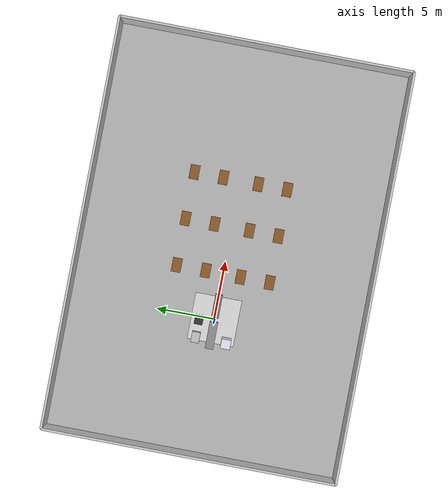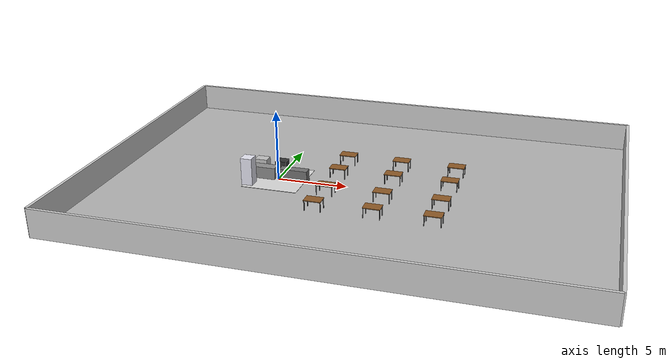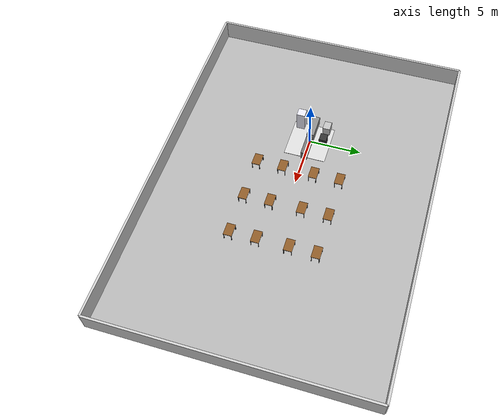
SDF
<?xml version="1.0" ?>

<sdf version="1.6">

<world name="restaurant_world">
<plugin name="gazebo_ros_state" filename="libgazebo_ros_state.so"/>

<!-- ================= FLOOR SECTION ================= -->

<model name="restaurant_floor">
     <pose>6 0 0 0 0 0</pose>
    <static>true</static>

    <link name="floor">

        <collision name="collision">
            <geometry>
                <box>
                    <size>35 25 0.05</size>
                </box>
            </geometry>
        </collision>

        <visual name="visual">
            <geometry>
                <box>
                    <size>35 25 0.05</size>
                </box>
            </geometry>

            <material>
                <ambient>
                    0.7 0.7 0.7 1
                </ambient>
            </material>

        </visual>

    </link>

</model>

<!-- ================= WALLS SECTION ================= -->
<model name="restaurant_walls">
    <static>true</static>
    <pose>0 0 0 0 0 0</pose>

    <!-- North wall -->
    <link name="wall_north">
        <pose>6 12.5 1 0 0 0</pose>
        <collision name="collision">
            <geometry><box><size>35 0.2 2</size></box></geometry>
        </collision>
        <visual name="visual">
            <geometry><box><size>35 0.2 2</size></box></geometry>
            <material>
                <ambient>0.8 0.8 0.8 1</ambient>
                <diffuse>0.8 0.8 0.8 1</diffuse>
            </material>
        </visual>
    </link>

    <!-- South wall -->
    <link name="wall_south">
        <pose>6 -12.5 1 0 0 0</pose>
        <collision name="collision">
            <geometry><box><size>35 0.2 2</size></box></geometry>
        </collision>
        <visual name="visual">
            <geometry><box><size>35 0.2 2</size></box></geometry>
            <material>
                <ambient>0.8 0.8 0.8 1</ambient>
                <diffuse>0.8 0.8 0.8 1</diffuse>
            </material>
        </visual>
    </link>

    <!-- East wall -->
    <link name="wall_east">
        <pose>23.5 0 1 0 0 1.5708</pose>
        <collision name="collision">
            <geometry><box><size>25 0.2 2</size></box></geometry>
        </collision>
        <visual name="visual">
            <geometry><box><size>25 0.2 2</size></box></geometry>
            <material>
                <ambient>0.8 0.8 0.8 1</ambient>
                <diffuse>0.8 0.8 0.8 1</diffuse>
            </material>
        </visual>
    </link>

    <!-- West wall -->
    <link name="wall_west">
        <pose>-11.5 0 1 0 0 1.5708</pose>
        <collision name="collision">
            <geometry><box><size>25 0.2 2</size></box></geometry>
        </collision>
        <visual name="visual">
            <geometry><box><size>25 0.2 2</size></box></geometry>
            <material>
                <ambient>0.8 0.8 0.8 1</ambient>
                <diffuse>0.8 0.8 0.8 1</diffuse>
            </material>
        </visual>
    </link>
</model>

<!-- ================= KITCHEN SECTION ================= -->

<include>

<uri>model://kitchen</uri>

<name>kitchen</name>

<pose>
0 0 0 0 0 0
</pose>

</include>

<!-- ================= TABLES ================= -->

<!-- ROW 1 -->

<include>
<uri>model://restaurant_table</uri>
<name>table_1</name>
<pose>4 4 0 0 0 0</pose>
</include>

<include>
<uri>model://restaurant_table</uri>
<name>table_2</name>
<pose>4 1.5 0 0 0 0</pose>
</include>

<include>
<uri>model://restaurant_table</uri>
<name>table_3</name>
<pose>4 -1.5 0 0 0 0</pose>
</include>

<include>
<uri>model://restaurant_table</uri>
<name>table_4</name>
<pose>4 -4 0 0 0 0</pose>
</include>

<!-- ROW 2 -->

<include>
<uri>model://restaurant_table</uri>
<name>table_5</name>
<pose>8 4 0 0 0 0</pose>
</include>

<include>
<uri>model://restaurant_table</uri>
<name>table_6</name>
<pose>8 1.5 0 0 0 0</pose>
</include>

<include>
<uri>model://restaurant_table</uri>
<name>table_7</name>
<pose>8 -1.5 0 0 0 0</pose>
</include>

<include>
<uri>model://restaurant_table</uri>
<name>table_8</name>
<pose>8 -4 0 0 0 0</pose>
</include>

<!-- ROW 3 -->

<include>
<uri>model://restaurant_table</uri>
<name>table_9</name>
<pose>12 4 0 0 0 0</pose>
</include>

<include>
<uri>model://restaurant_table</uri>
<name>table_10</name>
<pose>12 1.5 0 0 0 0</pose>
</include>

<include>
<uri>model://restaurant_table</uri>
<name>table_11</name>
<pose>12 -1.5 0 0 0 0</pose>
</include>

<include>
<uri>model://restaurant_table</uri>
<name>table_12</name>
<pose>12 -4 0 0 0 0</pose>
</include>

<!-- ================= LIGHT ================= -->

<include>
<uri>model://sun</uri>
</include>

</world>

</sdf>

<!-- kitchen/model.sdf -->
<sdf version="1.7">

<model name="kitchen">

<static>true</static>

<link name="kitchen_link">

  <!-- ================= FLOOR ================= -->

  <visual name="floor">

    <pose>0 0 0.025 0 0 0</pose>

    <geometry>

      <box>

        <size>4 4 0.05</size>

      </box>

    </geometry>

    <material>

      <ambient>0.85 0.85 0.85 1</ambient>

      <diffuse>0.85 0.85 0.85 1</diffuse>

    </material>

  </visual>

  <collision name="floor_collision">

    <pose>0 0 0.025 0 0 0</pose>

    <geometry>

      <box>

        <size>4 4 0.05</size>

      </box>

    </geometry>

  </collision>

  <!-- ================= SERVING COUNTER ================= -->

  <visual name="counter">

    <pose>1.2 0 0.45 0 0 0</pose>

    <geometry>

      <box>

        <size>2.0 0.6 0.9</size>

      </box>

    </geometry>

    <material>

      <ambient>0.45 0.45 0.45 1</ambient>

      <diffuse>0.45 0.45 0.45 1</diffuse>

    </material>

  </visual>

  <collision name="counter_collision">

    <pose>1.2 0 0.45 0 0 0</pose>

    <geometry>

      <box>

        <size>2.0 0.6 0.9</size>

      </box>

    </geometry>

  </collision>

  <!-- ================= BACK COUNTER ================= -->

  <visual name="back_counter">

    <pose>-1.3 0 0.45 0 0 0</pose>

    <geometry>

      <box>

        <size>2.3 0.7 0.9</size>

      </box>

    </geometry>

    <material>

      <ambient>0.55 0.55 0.55 1</ambient>

      <diffuse>0.55 0.55 0.55 1</diffuse>

    </material>

  </visual>

  <collision name="back_counter_collision">

    <pose>-1.3 0 0.45 0 0 0</pose>

    <geometry>

      <box>

        <size>2.3 0.7 0.9</size>

      </box>

    </geometry>

  </collision>

  <!-- ================= REFRIGERATOR ================= -->

  <visual name="fridge">

    <pose>-1.7 -1.3 1.0 0 0 0</pose>

    <geometry>

      <box>

        <size>0.8 0.8 2.0</size>

      </box>

    </geometry>

    <material>

      <ambient>0.9 0.9 0.95 1</ambient>

      <diffuse>0.9 0.9 0.95 1</diffuse>

    </material>

  </visual>

  <collision name="fridge_collision">

    <pose>-1.7 -1.3 1.0 0 0 0</pose>

    <geometry>

      <box>

        <size>0.8 0.8 2.0</size>

      </box>

    </geometry>

  </collision>

  <!-- ================= STOVE ================= -->

  <visual name="stove">

    <pose>-0.2 1.3 0.45 0 0 0</pose>

    <geometry>

      <box>

        <size>0.8 0.7 0.9</size>

      </box>

    </geometry>

    <material>

      <ambient>0.2 0.2 0.2 1</ambient>

      <diffuse>0.2 0.2 0.2 1</diffuse>

    </material>

  </visual>

  <collision name="stove_collision">

    <pose>-0.2 1.3 0.45 0 0 0</pose>

    <geometry>

      <box>

        <size>0.8 0.7 0.9</size>

      </box>

    </geometry>

  </collision>

  <!-- ================= SINK ================= -->

  <visual name="sink">

    <pose>-1.7 1.3 0.45 0 0 0</pose>

    <geometry>

      <box>

        <size>0.9 0.7 0.9</size>

      </box>

    </geometry>

    <material>

      <ambient>0.75 0.75 0.75 1</ambient>

      <diffuse>0.75 0.75 0.75 1</diffuse>

    </material>

  </visual>

  <collision name="sink_collision">

    <pose>-1.7 1.3 0.45 0 0 0</pose>

    <geometry>

      <box>

        <size>0.9 0.7 0.9</size>

      </box>

    </geometry>

  </collision>

</link>

</model>

</sdf>

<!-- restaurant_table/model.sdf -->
<sdf version="1.7">

<model name="restaurant_table">

<static>true</static>

<link name="table">

<!-- ================= TABLE TOP ================= -->

<collision name="top_collision">

<pose>0 0 0.75 0 0 0</pose>

<geometry>

<box>

<size>1.2 0.8 0.05</size>

</box>

</geometry>

</collision>

<visual name="top_visual">

<pose>0 0 0.75 0 0 0</pose>

<geometry>

<box>

<size>1.2 0.8 0.05</size>

</box>

</geometry>

<material>

<ambient>0.55 0.35 0.15 1</ambient>

<diffuse>0.55 0.35 0.15 1</diffuse>

</material>

</visual>

<!-- ================= LEG 1 ================= -->

<collision name="leg1_collision">

<pose>0.55 0.35 0.375 0 0 0</pose>

<geometry>

<box>

<size>0.05 0.05 0.75</size>

</box>

</geometry>

</collision>

<visual name="leg1_visual">

<pose>0.55 0.35 0.375 0 0 0</pose>

<geometry>

<box>

<size>0.05 0.05 0.75</size>

</box>

</geometry>

<material>

<ambient>0.3 0.3 0.3 1</ambient>

<diffuse>0.3 0.3 0.3 1</diffuse>

</material>

</visual>

<!-- ================= LEG 2 ================= -->

<collision name="leg2_collision">

<pose>0.55 -0.35 0.375 0 0 0</pose>

<geometry>

<box>

<size>0.05 0.05 0.75</size>

</box>

</geometry>

</collision>

<visual name="leg2_visual">

<pose>0.55 -0.35 0.375 0 0 0</pose>

<geometry>

<box>

<size>0.05 0.05 0.75</size>

</box>

</geometry>

<material>

<ambient>0.3 0.3 0.3 1</ambient>

<diffuse>0.3 0.3 0.3 1</diffuse>

</material>

</visual>

<!-- ================= LEG 3 ================= -->

<collision name="leg3_collision">

<pose>-0.55 0.35 0.375 0 0 0</pose>

<geometry>

<box>

<size>0.05 0.05 0.75</size>

</box>

</geometry>

</collision>

<visual name="leg3_visual">

<pose>-0.55 0.35 0.375 0 0 0</pose>

<geometry>

<box>

<size>0.05 0.05 0.75</size>

</box>

</geometry>

<material>

<ambient>0.3 0.3 0.3 1</ambient>

<diffuse>0.3 0.3 0.3 1</diffuse>

</material>

</visual>

<!-- ================= LEG 4 ================= -->

<collision name="leg4_collision">

<pose>-0.55 -0.35 0.375 0 0 0</pose>

<geometry>

<box>

<size>0.05 0.05 0.75</size>

</box>

</geometry>

</collision>

<visual name="leg4_visual">

<pose>-0.55 -0.35 0.375 0 0 0</pose>

<geometry>

<box>

<size>0.05 0.05 0.75</size>

</box>

</geometry>

<material>

<ambient>0.3 0.3 0.3 1</ambient>

<diffuse>0.3 0.3 0.3 1</diffuse>

</material>

</visual>

</link>

</model>

</sdf>
